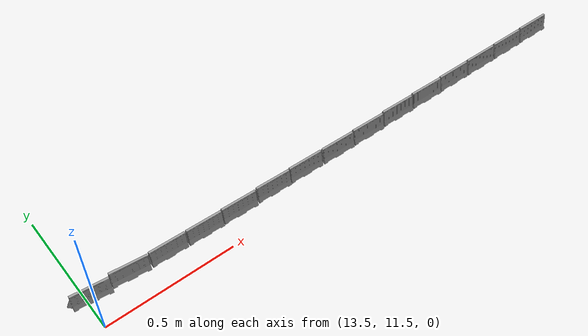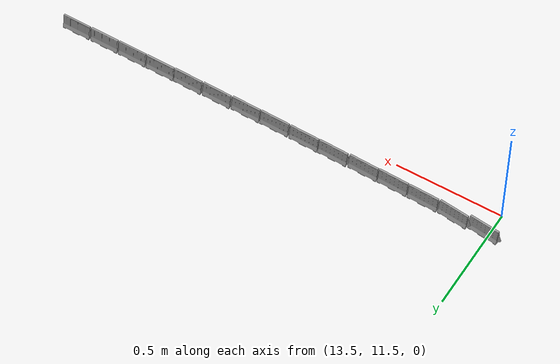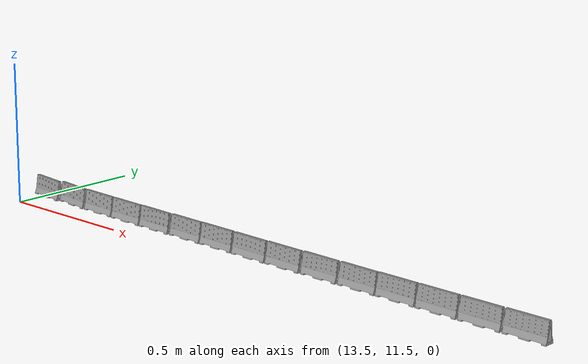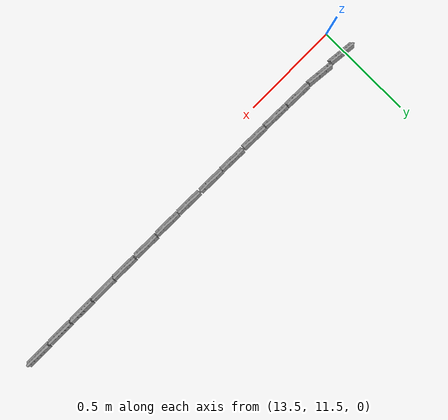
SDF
<sdf version="1.7">
 <world name="bfmc_official">
  <model name="separator_clone_16_clone_6_clone_10_clone_3_clone_0">
   <link name="link_0">
    <visual name="visual">
     <geometry><mesh><uri>model://separator/meshes/separator.dae</uri><scale>1 1 1</scale></mesh></geometry>
     <material>
      <lighting>1</lighting>
      <script><uri>file://media/materials/scripts/gazebo.material</uri><name>Gazebo/Gray</name></script>
      <shader type="vertex"><normal_map>__default__</normal_map></shader>
      <ambient>0.3 0.3 0.3 1</ambient>
      <diffuse>0.7 0.7 0.7 1</diffuse>
      <specular>0.01 0.01 0.01 1</specular>
      <emissive>0 0 0 1</emissive>
     </material>
    </visual>
   </link>
   <static>1</static>
   <pose>13.5212 11.6171 0.044594 0 0 -1.67631</pose>
  </model>
  <model name="separator_clone_16_clone_6_clone_10_clone_3_clone_1">
   <link name="link_0">
    <visual name="visual">
     <geometry><mesh><uri>model://separator/meshes/separator.dae</uri><scale>1 1 1</scale></mesh></geometry>
     <material>
      <lighting>1</lighting>
      <script><uri>file://media/materials/scripts/gazebo.material</uri><name>Gazebo/Gray</name></script>
      <shader type="vertex"><normal_map>__default__</normal_map></shader>
      <ambient>0.3 0.3 0.3 1</ambient>
      <diffuse>0.7 0.7 0.7 1</diffuse>
      <specular>0.01 0.01 0.01 1</specular>
      <emissive>0 0 0 1</emissive>
     </material>
    </visual>
   </link>
   <static>1</static>
   <pose>13.6651 11.6148 0.044594 0 0 -1.67631</pose>
  </model>
  <model name="separator_clone_16_clone_6_clone_10_clone_3_clone_1_clone">
   <link name="link_0">
    <visual name="visual">
     <geometry><mesh><uri>model://separator/meshes/separator.dae</uri><scale>1 1 1</scale></mesh></geometry>
     <material>
      <lighting>1</lighting>
      <script><uri>file://media/materials/scripts/gazebo.material</uri><name>Gazebo/Gray</name></script>
      <shader type="vertex"><normal_map>__default__</normal_map></shader>
      <ambient>0.3 0.3 0.3 1</ambient>
      <diffuse>0.7 0.7 0.7 1</diffuse>
      <specular>0.01 0.01 0.01 1</specular>
      <emissive>0 0 0 1</emissive>
     </material>
    </visual>
   </link>
   <static>1</static>
   <pose>13.8112 11.6089 0.044594 0 0 -1.59841</pose>
  </model>
  <model name="separator_clone_16_clone_6_clone_10_clone_3_clone_1_clone_0">
   <link name="link_0">
    <visual name="visual">
     <geometry><mesh><uri>model://separator/meshes/separator.dae</uri><scale>1 1 1</scale></mesh></geometry>
     <material>
      <lighting>1</lighting>
      <script><uri>file://media/materials/scripts/gazebo.material</uri><name>Gazebo/Gray</name></script>
      <shader type="vertex"><normal_map>__default__</normal_map></shader>
      <ambient>0.3 0.3 0.3 1</ambient>
      <diffuse>0.7 0.7 0.7 1</diffuse>
      <specular>0.01 0.01 0.01 1</specular>
      <emissive>0 0 0 1</emissive>
     </material>
    </visual>
   </link>
   <static>1</static>
   <pose>13.957 11.6055 0.044594 0 0 -1.59841</pose>
  </model>
  <model name="separator_clone_16_clone_6_clone_10_clone_3_clone_1_clone_1">
   <link name="link_0">
    <visual name="visual">
     <geometry><mesh><uri>model://separator/meshes/separator.dae</uri><scale>1 1 1</scale></mesh></geometry>
     <material>
      <lighting>1</lighting>
      <script><uri>file://media/materials/scripts/gazebo.material</uri><name>Gazebo/Gray</name></script>
      <shader type="vertex"><normal_map>__default__</normal_map></shader>
      <ambient>0.3 0.3 0.3 1</ambient>
      <diffuse>0.7 0.7 0.7 1</diffuse>
      <specular>0.01 0.01 0.01 1</specular>
      <emissive>0 0 0 1</emissive>
     </material>
    </visual>
   </link>
   <static>1</static>
   <pose>14.101 11.6043 0.044594 0 0 -1.59841</pose>
  </model>
  <model name="separator_clone_16_clone_6_clone_10_clone_3_clone_1_clone_2">
   <link name="link_0">
    <visual name="visual">
     <geometry><mesh><uri>model://separator/meshes/separator.dae</uri><scale>1 1 1</scale></mesh></geometry>
     <material>
      <lighting>1</lighting>
      <script><uri>file://media/materials/scripts/gazebo.material</uri><name>Gazebo/Gray</name></script>
      <shader type="vertex"><normal_map>__default__</normal_map></shader>
      <ambient>0.3 0.3 0.3 1</ambient>
      <diffuse>0.7 0.7 0.7 1</diffuse>
      <specular>0.01 0.01 0.01 1</specular>
      <emissive>0 0 0 1</emissive>
     </material>
    </visual>
   </link>
   <static>1</static>
   <pose>14.2489 11.6046 0.044594 0 0 -1.59841</pose>
  </model>
  <model name="separator_clone_16_clone_6_clone_10_clone_3_clone_1_clone_2_clone">
   <link name="link_0">
    <visual name="visual">
     <geometry><mesh><uri>model://separator/meshes/separator.dae</uri><scale>1 1 1</scale></mesh></geometry>
     <material>
      <lighting>1</lighting>
      <script><uri>file://media/materials/scripts/gazebo.material</uri><name>Gazebo/Gray</name></script>
      <shader type="vertex"><normal_map>__default__</normal_map></shader>
      <ambient>0.3 0.3 0.3 1</ambient>
      <diffuse>0.7 0.7 0.7 1</diffuse>
      <specular>0.01 0.01 0.01 1</specular>
      <emissive>0 0 0 1</emissive>
     </material>
    </visual>
   </link>
   <static>1</static>
   <pose>14.3926 11.6036 0.044594 0 0 -1.59197</pose>
  </model>
  <model name="separator_clone_16_clone_6_clone_10_clone_3_clone_1_clone_2_clone_0">
   <link name="link_0">
    <visual name="visual">
     <geometry><mesh><uri>model://separator/meshes/separator.dae</uri><scale>1 1 1</scale></mesh></geometry>
     <material>
      <lighting>1</lighting>
      <script><uri>file://media/materials/scripts/gazebo.material</uri><name>Gazebo/Gray</name></script>
      <shader type="vertex"><normal_map>__default__</normal_map></shader>
      <ambient>0.3 0.3 0.3 1</ambient>
      <diffuse>0.7 0.7 0.7 1</diffuse>
      <specular>0.01 0.01 0.01 1</specular>
      <emissive>0 0 0 1</emissive>
     </material>
    </visual>
   </link>
   <static>1</static>
   <pose>14.5403 11.601 0.044594 0 0 -1.59197</pose>
  </model>
  <model name="separator_clone_16_clone_6_clone_10_clone_3_clone_1_clone_2_clone_1">
   <link name="link_0">
    <visual name="visual">
     <geometry><mesh><uri>model://separator/meshes/separator.dae</uri><scale>1 1 1</scale></mesh></geometry>
     <material>
      <lighting>1</lighting>
      <script><uri>file://media/materials/scripts/gazebo.material</uri><name>Gazebo/Gray</name></script>
      <shader type="vertex"><normal_map>__default__</normal_map></shader>
      <ambient>0.3 0.3 0.3 1</ambient>
      <diffuse>0.7 0.7 0.7 1</diffuse>
      <specular>0.01 0.01 0.01 1</specular>
      <emissive>0 0 0 1</emissive>
     </material>
    </visual>
   </link>
   <static>1</static>
   <pose>14.6852 11.6004 0.044594 0 0 -1.59197</pose>
  </model>
  <model name="separator_clone_16_clone_6_clone_10_clone_3_clone_1_clone_2_clone_2">
   <link name="link_0">
    <visual name="visual">
     <geometry><mesh><uri>model://separator/meshes/separator.dae</uri><scale>1 1 1</scale></mesh></geometry>
     <material>
      <lighting>1</lighting>
      <script><uri>file://media/materials/scripts/gazebo.material</uri><name>Gazebo/Gray</name></script>
      <shader type="vertex"><normal_map>__default__</normal_map></shader>
      <ambient>0.3 0.3 0.3 1</ambient>
      <diffuse>0.7 0.7 0.7 1</diffuse>
      <specular>0.01 0.01 0.01 1</specular>
      <emissive>0 0 0 1</emissive>
     </material>
    </visual>
   </link>
   <static>1</static>
   <pose>14.8323 11.602 0.044594 0 0 -1.59197</pose>
  </model>
  <model name="separator_clone_16_clone_6_clone_10_clone_3_clone_1_clone_2_clone_3">
   <link name="link_0">
    <visual name="visual">
     <geometry><mesh><uri>model://separator/meshes/separator.dae</uri><scale>1 1 1</scale></mesh></geometry>
     <material>
      <lighting>1</lighting>
      <script><uri>file://media/materials/scripts/gazebo.material</uri><name>Gazebo/Gray</name></script>
      <shader type="vertex"><normal_map>__default__</normal_map></shader>
      <ambient>0.3 0.3 0.3 1</ambient>
      <diffuse>0.7 0.7 0.7 1</diffuse>
      <specular>0.01 0.01 0.01 1</specular>
      <emissive>0 0 0 1</emissive>
     </material>
    </visual>
   </link>
   <static>1</static>
   <pose>14.9799 11.6021 0.044594 0 0 -1.59197</pose>
  </model>
  <model name="separator_clone_16_clone_6_clone_10_clone_3_clone_1_clone_2_clone_3_clone">
   <link name="link_0">
    <visual name="visual">
     <geometry><mesh><uri>model://separator/meshes/separator.dae</uri><scale>1 1 1</scale></mesh></geometry>
     <material>
      <lighting>1</lighting>
      <script><uri>file://media/materials/scripts/gazebo.material</uri><name>Gazebo/Gray</name></script>
      <shader type="vertex"><normal_map>__default__</normal_map></shader>
      <ambient>0.3 0.3 0.3 1</ambient>
      <diffuse>0.7 0.7 0.7 1</diffuse>
      <specular>0.01 0.01 0.01 1</specular>
      <emissive>0 0 0 1</emissive>
     </material>
    </visual>
   </link>
   <static>1</static>
   <pose>15.1235 11.6026 0.044594 0 0 -1.57886</pose>
  </model>
  <model name="separator_clone_16_clone_6_clone_10_clone_3_clone_1_clone_2_clone_3_clone_0">
   <link name="link_0">
    <visual name="visual">
     <geometry><mesh><uri>model://separator/meshes/separator.dae</uri><scale>1 1 1</scale></mesh></geometry>
     <material>
      <lighting>1</lighting>
      <script><uri>file://media/materials/scripts/gazebo.material</uri><name>Gazebo/Gray</name></script>
      <shader type="vertex"><normal_map>__default__</normal_map></shader>
      <ambient>0.3 0.3 0.3 1</ambient>
      <diffuse>0.7 0.7 0.7 1</diffuse>
      <specular>0.01 0.01 0.01 1</specular>
      <emissive>0 0 0 1</emissive>
     </material>
    </visual>
   </link>
   <static>1</static>
   <pose>15.2699 11.6021 0.044594 0 0 -1.57886</pose>
  </model>
  <model name="separator_clone_16_clone_6_clone_10_clone_3_clone_1_clone_2_clone_3_clone_1">
   <link name="link_0">
    <visual name="visual">
     <geometry><mesh><uri>model://separator/meshes/separator.dae</uri><scale>1 1 1</scale></mesh></geometry>
     <material>
      <lighting>1</lighting>
      <script><uri>file://media/materials/scripts/gazebo.material</uri><name>Gazebo/Gray</name></script>
      <shader type="vertex"><normal_map>__default__</normal_map></shader>
      <ambient>0.3 0.3 0.3 1</ambient>
      <diffuse>0.7 0.7 0.7 1</diffuse>
      <specular>0.01 0.01 0.01 1</specular>
      <emissive>0 0 0 1</emissive>
     </material>
    </visual>
   </link>
   <static>1</static>
   <pose>15.417 11.6021 0.044594 0 0 -1.57886</pose>
  </model>
  <model name="separator_clone_16_clone_6_clone_10_clone_3_clone_1_clone_2_clone_3_clone_2">
   <link name="link_0">
    <visual name="visual">
     <geometry><mesh><uri>model://separator/meshes/separator.dae</uri><scale>1 1 1</scale></mesh></geometry>
     <material>
      <lighting>1</lighting>
      <script><uri>file://media/materials/scripts/gazebo.material</uri><name>Gazebo/Gray</name></script>
      <shader type="vertex"><normal_map>__default__</normal_map></shader>
      <ambient>0.3 0.3 0.3 1</ambient>
      <diffuse>0.7 0.7 0.7 1</diffuse>
      <specular>0.01 0.01 0.01 1</specular>
      <emissive>0 0 0 1</emissive>
     </material>
    </visual>
   </link>
   <static>1</static>
   <pose>15.5648 11.6028 0.044594 0 0 -1.57886</pose>
  </model>
 </world>
</sdf>
